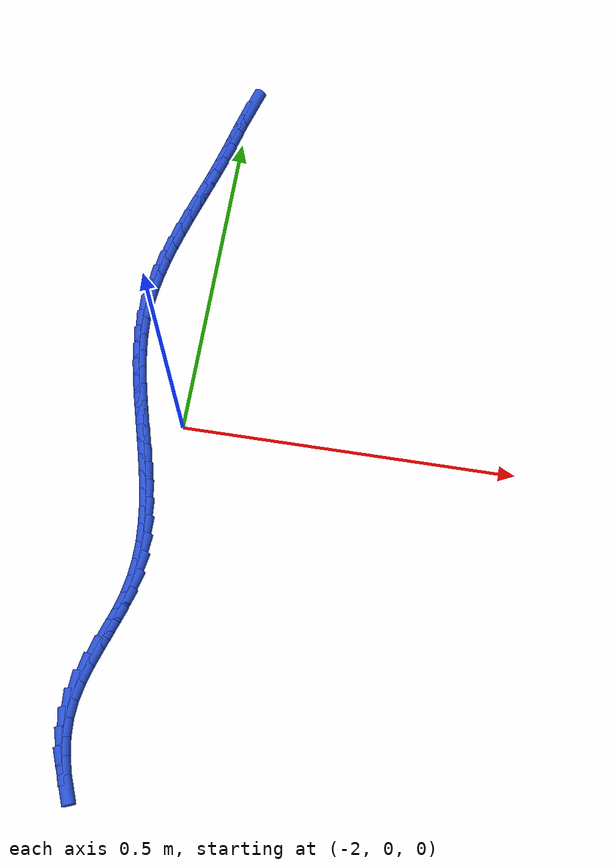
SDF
<sdf version="1.6">
 <world name="default">
  <model name="ground_plane">
   <static>1</static>
   <link name="link">
    <collision name="collision">
     <geometry><plane><normal>0 0 1</normal><size>100 100</size></plane></geometry>
     <surface><friction><ode><mu>100</mu><mu2>50</mu2></ode></friction></surface>
    </collision>
    <visual name="visual">
     <cast_shadows>0</cast_shadows>
     <geometry><plane><normal>0 0 1</normal><size>100 100</size></plane></geometry>
     <material>
      <script><uri>file://media/materials/scripts/gazebo.material</uri><name>Gazebo/WhiteGlow</name></script>
     </material>
    </visual>
   </link>
  </model>
  <model name="line">
   <link name="link_103">
    <pose>-1.9986682716559452 0.5607476103574861 0.01 0 1.57 1.2806690898201711</pose>
    <collision name="collision">
     <geometry><cylinder><radius>0.01</radius><length>0.08</length></cylinder></geometry>
    </collision>
    <visual name="visual">
     <material>
      <script><name>Gazebo/Blue</name><uri>file://media/materials/scripts/gazebo.material</uri></script>
     </material>
     <geometry><cylinder><radius>0.01</radius><length>0.08</length></cylinder></geometry>
    </visual>
   </link>
   <link name="link_104">
    <pose>-2.0065383279543005 0.5343867982102974 0.01 0 1.57 1.312796311995907</pose>
    <collision name="collision">
     <geometry><cylinder><radius>0.01</radius><length>0.08</length></cylinder></geometry>
    </collision>
    <visual name="visual">
     <material>
      <script><name>Gazebo/Blue</name><uri>file://media/materials/scripts/gazebo.material</uri></script>
     </material>
     <geometry><cylinder><radius>0.01</radius><length>0.08</length></cylinder></geometry>
    </visual>
   </link>
   <link name="link_105">
    <pose>-2.0136687374384765 0.5073655075544949 0.01 0 1.57 1.3202272150371472</pose>
    <collision name="collision">
     <geometry><cylinder><radius>0.01</radius><length>0.08</length></cylinder></geometry>
    </collision>
    <visual name="visual">
     <material>
      <script><name>Gazebo/Blue</name><uri>file://media/materials/scripts/gazebo.material</uri></script>
     </material>
     <geometry><cylinder><radius>0.01</radius><length>0.08</length></cylinder></geometry>
    </visual>
   </link>
   <link name="link_106">
    <pose>-2.0206563489937377 0.4800646286287665 0.01 0 1.57 1.3048481632873168</pose>
    <collision name="collision">
     <geometry><cylinder><radius>0.01</radius><length>0.08</length></cylinder></geometry>
    </collision>
    <visual name="visual">
     <material>
      <script><name>Gazebo/Blue</name><uri>file://media/materials/scripts/gazebo.material</uri></script>
     </material>
     <geometry><cylinder><radius>0.01</radius><length>0.08</length></cylinder></geometry>
    </visual>
   </link>
   <link name="link_107">
    <pose>-2.0280693880428973 0.4528509099171702 0.01 0 1.57 1.2839167471857842</pose>
    <collision name="collision">
     <geometry><cylinder><radius>0.01</radius><length>0.08</length></cylinder></geometry>
    </collision>
    <visual name="visual">
     <material>
      <script><name>Gazebo/Blue</name><uri>file://media/materials/scripts/gazebo.material</uri></script>
     </material>
     <geometry><cylinder><radius>0.01</radius><length>0.08</length></cylinder></geometry>
    </visual>
   </link>
   <link name="link_108">
    <pose>-2.0360291475922287 0.4258702877437336 0.01 0 1.57 1.271102440037605</pose>
    <collision name="collision">
     <geometry><cylinder><radius>0.01</radius><length>0.08</length></cylinder></geometry>
    </collision>
    <visual name="visual">
     <material>
      <script><name>Gazebo/Blue</name><uri>file://media/materials/scripts/gazebo.material</uri></script>
     </material>
     <geometry><cylinder><radius>0.01</radius><length>0.08</length></cylinder></geometry>
    </visual>
   </link>
   <link name="link_109">
    <pose>-2.0443030810901095 0.39909387988231465 0.01 0 1.57 1.2668317229731851</pose>
    <collision name="collision">
     <geometry><cylinder><radius>0.01</radius><length>0.08</length></cylinder></geometry>
    </collision>
    <visual name="visual">
     <material>
      <script><name>Gazebo/Blue</name><uri>file://media/materials/scripts/gazebo.material</uri></script>
     </material>
     <geometry><cylinder><radius>0.01</radius><length>0.08</length></cylinder></geometry>
    </visual>
   </link>
   <link name="link_110">
    <pose>-2.0526489560666823 0.37248801866618125 0.01 0 1.57 1.2712181391897115</pose>
    <collision name="collision">
     <geometry><cylinder><radius>0.01</radius><length>0.08</length></cylinder></geometry>
    </collision>
    <visual name="visual">
     <material>
      <script><name>Gazebo/Blue</name><uri>file://media/materials/scripts/gazebo.material</uri></script>
     </material>
     <geometry><cylinder><radius>0.01</radius><length>0.08</length></cylinder></geometry>
    </visual>
   </link>
   <link name="link_111">
    <pose>-2.060824540052088 0.3460190364286004 0.01 0 1.57 1.2844509128796304</pose>
    <collision name="collision">
     <geometry><cylinder><radius>0.01</radius><length>0.08</length></cylinder></geometry>
    </collision>
    <visual name="visual">
     <material>
      <script><name>Gazebo/Blue</name><uri>file://media/materials/scripts/gazebo.material</uri></script>
     </material>
     <geometry><cylinder><radius>0.01</radius><length>0.08</length></cylinder></geometry>
    </visual>
   </link>
   <link name="link_112">
    <pose>-2.068587600576468 0.31965326550283946 0.01 0 1.57 1.3067895042421742</pose>
    <collision name="collision">
     <geometry><cylinder><radius>0.01</radius><length>0.08</length></cylinder></geometry>
    </collision>
    <visual name="visual">
     <material>
      <script><name>Gazebo/Blue</name><uri>file://media/materials/scripts/gazebo.material</uri></script>
     </material>
     <geometry><cylinder><radius>0.01</radius><length>0.08</length></cylinder></geometry>
    </visual>
   </link>
   <link name="link_113">
    <pose>-2.0756959051699666 0.2933570382221661 0.01 0 1.57 1.3385365455656812</pose>
    <collision name="collision">
     <geometry><cylinder><radius>0.01</radius><length>0.08</length></cylinder></geometry>
    </collision>
    <visual name="visual">
     <material>
      <script><name>Gazebo/Blue</name><uri>file://media/materials/scripts/gazebo.material</uri></script>
     </material>
     <geometry><cylinder><radius>0.01</radius><length>0.08</length></cylinder></geometry>
    </visual>
   </link>
   <link name="link_114">
    <pose>-2.081907221362724 0.2670966869198472 0.01 0 1.57 1.3799835985225284</pose>
    <collision name="collision">
     <geometry><cylinder><radius>0.01</radius><length>0.08</length></cylinder></geometry>
    </collision>
    <visual name="visual">
     <material>
      <script><name>Gazebo/Blue</name><uri>file://media/materials/scripts/gazebo.material</uri></script>
     </material>
     <geometry><cylinder><radius>0.01</radius><length>0.08</length></cylinder></geometry>
    </visual>
   </link>
   <link name="link_115">
    <pose>-2.086979316684881 0.24083854392915044 0.01 0 1.57 1.4313236956638125</pose>
    <collision name="collision">
     <geometry><cylinder><radius>0.01</radius><length>0.08</length></cylinder></geometry>
    </collision>
    <visual name="visual">
     <material>
      <script><name>Gazebo/Blue</name><uri>file://media/materials/scripts/gazebo.material</uri></script>
     </material>
     <geometry><cylinder><radius>0.01</radius><length>0.08</length></cylinder></geometry>
    </visual>
   </link>
   <link name="link_116">
    <pose>-2.0906699586665805 0.21454894158334303 0.01 0 1.57 1.492528257004011</pose>
    <collision name="collision">
     <geometry><cylinder><radius>0.01</radius><length>0.08</length></cylinder></geometry>
    </collision>
    <visual name="visual">
     <material>
      <script><name>Gazebo/Blue</name><uri>file://media/materials/scripts/gazebo.material</uri></script>
     </material>
     <geometry><cylinder><radius>0.01</radius><length>0.08</length></cylinder></geometry>
    </visual>
   </link>
   <link name="link_117">
    <pose>-2.0927369148379658 0.18819421221569252 0.01 0 1.57 1.563189793993811</pose>
    <collision name="collision">
     <geometry><cylinder><radius>0.01</radius><length>0.08</length></cylinder></geometry>
    </collision>
    <visual name="visual">
     <material>
      <script><name>Gazebo/Blue</name><uri>file://media/materials/scripts/gazebo.material</uri></script>
     </material>
     <geometry><cylinder><radius>0.01</radius><length>0.08</length></cylinder></geometry>
    </visual>
   </link>
   <link name="link_118">
    <pose>-2.092938138190759 0.16174070479559222 0.01 0 1.57 -1.5040491339203783</pose>
    <collision name="collision">
     <geometry><cylinder><radius>0.01</radius><length>0.08</length></cylinder></geometry>
    </collision>
    <visual name="visual">
     <material>
      <script><name>Gazebo/Blue</name><uri>file://media/materials/scripts/gazebo.material</uri></script>
     </material>
     <geometry><cylinder><radius>0.01</radius><length>0.08</length></cylinder></geometry>
    </visual>
   </link>
   <link name="link_119">
    <pose>-2.091161742025103 0.13516644382796758 0.01 0 1.57 -1.4400898493719967</pose>
    <collision name="collision">
     <geometry><cylinder><radius>0.01</radius><length>0.08</length></cylinder></geometry>
    </collision>
    <visual name="visual">
     <material>
      <script><name>Gazebo/Blue</name><uri>file://media/materials/scripts/gazebo.material</uri></script>
     </material>
     <geometry><cylinder><radius>0.01</radius><length>0.08</length></cylinder></geometry>
    </visual>
   </link>
   <link name="link_120">
    <pose>-2.0876538567135623 0.10848156837786745 0.01 0 1.57 -1.3886609423151066</pose>
    <collision name="collision">
     <geometry><cylinder><radius>0.01</radius><length>0.08</length></cylinder></geometry>
    </collision>
    <visual name="visual">
     <material>
      <script><name>Gazebo/Blue</name><uri>file://media/materials/scripts/gazebo.material</uri></script>
     </material>
     <geometry><cylinder><radius>0.01</radius><length>0.08</length></cylinder></geometry>
    </visual>
   </link>
   <link name="link_121">
    <pose>-2.082721633098677 0.081701691119568 0.01 0 1.57 -1.349266574216916</pose>
    <collision name="collision">
     <geometry><cylinder><radius>0.01</radius><length>0.08</length></cylinder></geometry>
    </collision>
    <visual name="visual">
     <material>
      <script><name>Gazebo/Blue</name><uri>file://media/materials/scripts/gazebo.material</uri></script>
     </material>
     <geometry><cylinder><radius>0.01</radius><length>0.08</length></cylinder></geometry>
    </visual>
   </link>
   <link name="link_122">
    <pose>-2.076672222022983 0.05484242472734641 0.01 0 1.57 -1.321324104664589</pose>
    <collision name="collision">
     <geometry><cylinder><radius>0.01</radius><length>0.08</length></cylinder></geometry>
    </collision>
    <visual name="visual">
     <material>
      <script><name>Gazebo/Blue</name><uri>file://media/materials/scripts/gazebo.material</uri></script>
     </material>
     <geometry><cylinder><radius>0.01</radius><length>0.08</length></cylinder></geometry>
    </visual>
   </link>
   <link name="link_123">
    <pose>-2.0698127743290198 0.027919381875479748 0.01 0 1.57 -1.3043182582823416</pose>
    <collision name="collision">
     <geometry><cylinder><radius>0.01</radius><length>0.08</length></cylinder></geometry>
    </collision>
    <visual name="visual">
     <material>
      <script><name>Gazebo/Blue</name><uri>file://media/materials/scripts/gazebo.material</uri></script>
     </material>
     <geometry><cylinder><radius>0.01</radius><length>0.08</length></cylinder></geometry>
    </visual>
   </link>
   <link name="link_124">
    <pose>-2.0624504408593256 0.0009481752382449332 0.01 0 1.57 -1.297890088162246</pose>
    <collision name="collision">
     <geometry><cylinder><radius>0.01</radius><length>0.08</length></cylinder></geometry>
    </collision>
    <visual name="visual">
     <material>
      <script><name>Gazebo/Blue</name><uri>file://media/materials/scripts/gazebo.material</uri></script>
     </material>
     <geometry><cylinder><radius>0.01</radius><length>0.08</length></cylinder></geometry>
    </visual>
   </link>
   <link name="link_125">
    <pose>-2.0548923724564387 -0.02605558251008113 0.01 0 1.57 -1.3018810326216708</pose>
    <collision name="collision">
     <geometry><cylinder><radius>0.01</radius><length>0.08</length></cylinder></geometry>
    </collision>
    <visual name="visual">
     <material>
      <script><name>Gazebo/Blue</name><uri>file://media/materials/scripts/gazebo.material</uri></script>
     </material>
     <geometry><cylinder><radius>0.01</radius><length>0.08</length></cylinder></geometry>
    </visual>
   </link>
   <link name="link_126">
    <pose>-2.047445719962897 -0.05307627869522154 0.01 0 1.57 -1.3163464626770975</pose>
    <collision name="collision">
     <geometry><cylinder><radius>0.01</radius><length>0.08</length></cylinder></geometry>
    </collision>
    <visual name="visual">
     <material>
      <script><name>Gazebo/Blue</name><uri>file://media/materials/scripts/gazebo.material</uri></script>
     </material>
     <geometry><cylinder><radius>0.01</radius><length>0.08</length></cylinder></geometry>
    </visual>
   </link>
   <link name="link_127">
    <pose>-2.0404176342212397 -0.08009830064289926 0.01 0 1.57 -1.3415446133427562</pose>
    <collision name="collision">
     <geometry><cylinder><radius>0.01</radius><length>0.08</length></cylinder></geometry>
    </collision>
    <visual name="visual">
     <material>
      <script><name>Gazebo/Blue</name><uri>file://media/materials/scripts/gazebo.material</uri></script>
     </material>
     <geometry><cylinder><radius>0.01</radius><length>0.08</length></cylinder></geometry>
    </visual>
   </link>
   <link name="link_128">
    <pose>-2.034115266074004 -0.10710603567883745 0.01 0 1.57 -1.377898045762</pose>
    <collision name="collision">
     <geometry><cylinder><radius>0.01</radius><length>0.08</length></cylinder></geometry>
    </collision>
    <visual name="visual">
     <material>
      <script><name>Gazebo/Blue</name><uri>file://media/materials/scripts/gazebo.material</uri></script>
     </material>
     <geometry><cylinder><radius>0.01</radius><length>0.08</length></cylinder></geometry>
    </visual>
   </link>
   <link name="link_129">
    <pose>-2.0288457663637285 -0.13408387112875908 0.01 0 1.57 -1.4259165702185224</pose>
    <collision name="collision">
     <geometry><cylinder><radius>0.01</radius><length>0.08</length></cylinder></geometry>
    </collision>
    <visual name="visual">
     <material>
      <script><name>Gazebo/Blue</name><uri>file://media/materials/scripts/gazebo.material</uri></script>
     </material>
     <geometry><cylinder><radius>0.01</radius><length>0.08</length></cylinder></geometry>
    </visual>
   </link>
   <link name="link_130">
    <pose>-2.024916285932952 -0.16101619431838726 0.01 0 1.57 -1.4860644984905909</pose>
    <collision name="collision">
     <geometry><cylinder><radius>0.01</radius><length>0.08</length></cylinder></geometry>
    </collision>
    <visual name="visual">
     <material>
      <script><name>Gazebo/Blue</name><uri>file://media/materials/scripts/gazebo.material</uri></script>
     </material>
     <geometry><cylinder><radius>0.01</radius><length>0.08</length></cylinder></geometry>
    </visual>
   </link>
   <link name="link_131">
    <pose>-2.022633975624213 -0.18788739257344506 0.01 0 1.57 -1.5585559996642009</pose>
    <collision name="collision">
     <geometry><cylinder><radius>0.01</radius><length>0.08</length></cylinder></geometry>
    </collision>
    <visual name="visual">
     <material>
      <script><name>Gazebo/Blue</name><uri>file://media/materials/scripts/gazebo.material</uri></script>
     </material>
     <geometry><cylinder><radius>0.01</radius><length>0.08</length></cylinder></geometry>
    </visual>
   </link>
   <link name="link_132">
    <pose>-2.022305986280048 -0.21468185321965555 0.01 0 1.57 1.4985131300323442</pose>
    <collision name="collision">
     <geometry><cylinder><radius>0.01</radius><length>0.08</length></cylinder></geometry>
    </collision>
    <visual name="visual">
     <material>
      <script><name>Gazebo/Blue</name><uri>file://media/materials/scripts/gazebo.material</uri></script>
     </material>
     <geometry><cylinder><radius>0.01</radius><length>0.08</length></cylinder></geometry>
    </visual>
   </link>
   <link name="link_133">
    <pose>-2.0242394687429974 -0.24138396358274172 0.01 0 1.57 1.403341574387298</pose>
    <collision name="collision">
     <geometry><cylinder><radius>0.01</radius><length>0.08</length></cylinder></geometry>
    </collision>
    <visual name="visual">
     <material>
      <script><name>Gazebo/Blue</name><uri>file://media/materials/scripts/gazebo.material</uri></script>
     </material>
     <geometry><cylinder><radius>0.01</radius><length>0.08</length></cylinder></geometry>
    </visual>
   </link>
   <link name="link_134">
    <pose>-2.0287348977714768 -0.26797820045878645 0.01 0 1.57 1.3159357077389513</pose>
    <collision name="collision">
     <geometry><cylinder><radius>0.01</radius><length>0.08</length></cylinder></geometry>
    </collision>
    <visual name="visual">
     <material>
      <script><name>Gazebo/Blue</name><uri>file://media/materials/scripts/gazebo.material</uri></script>
     </material>
     <geometry><cylinder><radius>0.01</radius><length>0.08</length></cylinder></geometry>
    </visual>
   </link>
   <link name="link_135">
    <pose>-2.0356328436386786 -0.2944552041102092 0.01 0 1.57 1.2625928962799071</pose>
    <collision name="collision">
     <geometry><cylinder><radius>0.01</radius><length>0.08</length></cylinder></geometry>
    </collision>
    <visual name="visual">
     <material>
      <script><name>Gazebo/Blue</name><uri>file://media/materials/scripts/gazebo.material</uri></script>
     </material>
     <geometry><cylinder><radius>0.01</radius><length>0.08</length></cylinder></geometry>
    </visual>
   </link>
   <link name="link_136">
    <pose>-2.044024633548566 -0.32081565587226873 0.01 0 1.57 1.2435842463656452</pose>
    <collision name="collision">
     <geometry><cylinder><radius>0.01</radius><length>0.08</length></cylinder></geometry>
    </collision>
    <visual name="visual">
     <material>
      <script><name>Gazebo/Blue</name><uri>file://media/materials/scripts/gazebo.material</uri></script>
     </material>
     <geometry><cylinder><radius>0.01</radius><length>0.08</length></cylinder></geometry>
    </visual>
   </link>
   <link name="link_137">
    <pose>-2.0529326943716555 -0.34706116045648844 0.01 0 1.57 1.2581640907074947</pose>
    <collision name="collision">
     <geometry><cylinder><radius>0.01</radius><length>0.08</length></cylinder></geometry>
    </collision>
    <visual name="visual">
     <material>
      <script><name>Gazebo/Blue</name><uri>file://media/materials/scripts/gazebo.material</uri></script>
     </material>
     <geometry><cylinder><radius>0.01</radius><length>0.08</length></cylinder></geometry>
    </visual>
   </link>
   <link name="link_138">
    <pose>-2.061379452978466 -0.3731933225743919 0.01 0 1.57 1.3077161548948373</pose>
    <collision name="collision">
     <geometry><cylinder><radius>0.01</radius><length>0.08</length></cylinder></geometry>
    </collision>
    <visual name="visual">
     <material>
      <script><name>Gazebo/Blue</name><uri>file://media/materials/scripts/gazebo.material</uri></script>
     </material>
     <geometry><cylinder><radius>0.01</radius><length>0.08</length></cylinder></geometry>
    </visual>
   </link>
   <link name="link_139">
    <pose>-2.068387336239514 -0.3992137469375028 0.01 0 1.57 1.3954119255328863</pose>
    <collision name="collision">
     <geometry><cylinder><radius>0.01</radius><length>0.08</length></cylinder></geometry>
    </collision>
    <visual name="visual">
     <material>
      <script><name>Gazebo/Blue</name><uri>file://media/materials/scripts/gazebo.material</uri></script>
     </material>
     <geometry><cylinder><radius>0.01</radius><length>0.08</length></cylinder></geometry>
    </visual>
   </link>
   <link name="link_140">
    <pose>-2.072978771025319 -0.4251240382573445 0.01 0 1.57 1.5180339423549722</pose>
    <collision name="collision">
     <geometry><cylinder><radius>0.01</radius><length>0.08</length></cylinder></geometry>
    </collision>
    <visual name="visual">
     <material>
      <script><name>Gazebo/Blue</name><uri>file://media/materials/scripts/gazebo.material</uri></script>
     </material>
     <geometry><cylinder><radius>0.01</radius><length>0.08</length></cylinder></geometry>
    </visual>
   </link>
   <link name="link_141">
    <pose>-2.074341169610937 -0.45092147176757424 0.01 0 1.57 -1.498668264338163</pose>
    <collision name="collision">
     <geometry><cylinder><radius>0.01</radius><length>0.08</length></cylinder></geometry>
    </collision>
    <visual name="visual">
     <material>
      <script><name>Gazebo/Blue</name><uri>file://media/materials/scripts/gazebo.material</uri></script>
     </material>
     <geometry><cylinder><radius>0.01</radius><length>0.08</length></cylinder></geometry>
    </visual>
   </link>
   <link name="link_142">
    <pose>-2.0724871330446675 -0.47658166844376776 0.01 0 1.57 -1.3846642560468994</pose>
    <collision name="collision">
     <geometry><cylinder><radius>0.01</radius><length>0.08</length></cylinder></geometry>
    </collision>
    <visual name="visual">
     <material>
      <script><name>Gazebo/Blue</name><uri>file://media/materials/scripts/gazebo.material</uri></script>
     </material>
     <geometry><cylinder><radius>0.01</radius><length>0.08</length></cylinder></geometry>
    </visual>
   </link>
   <link name="link_143">
    <pose>-2.067686721474258 -0.502073493127674 0.01 0 1.57 -1.2833726337103988</pose>
    <collision name="collision">
     <geometry><cylinder><radius>0.01</radius><length>0.08</length></cylinder></geometry>
    </collision>
    <visual name="visual">
     <material>
      <script><name>Gazebo/Blue</name><uri>file://media/materials/scripts/gazebo.material</uri></script>
     </material>
     <geometry><cylinder><radius>0.01</radius><length>0.08</length></cylinder></geometry>
    </visual>
   </link>
   <link name="link_144">
    <pose>-2.060210080174344 -0.5273658084271776 0.01 0 1.57 -1.1951819607781038</pose>
    <collision name="collision">
     <geometry><cylinder><radius>0.01</radius><length>0.08</length></cylinder></geometry>
    </collision>
    <visual name="visual">
     <material>
      <script><name>Gazebo/Blue</name><uri>file://media/materials/scripts/gazebo.material</uri></script>
     </material>
     <geometry><cylinder><radius>0.01</radius><length>0.08</length></cylinder></geometry>
    </visual>
   </link>
  </model>
 </world>
</sdf>
